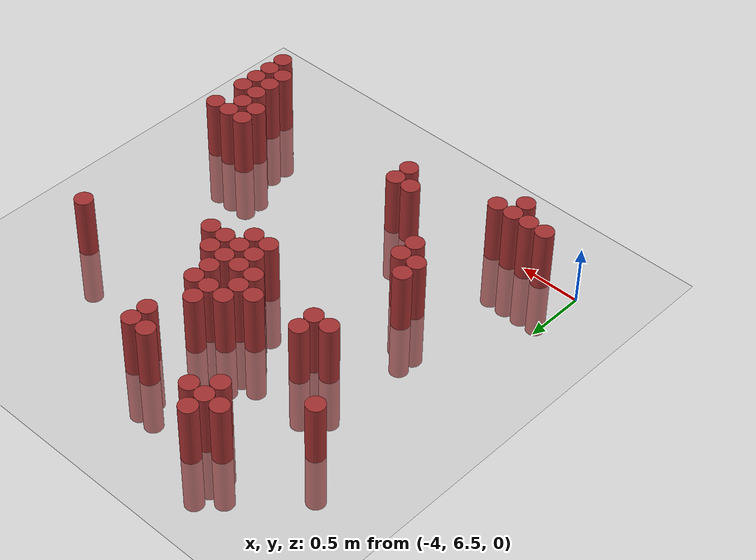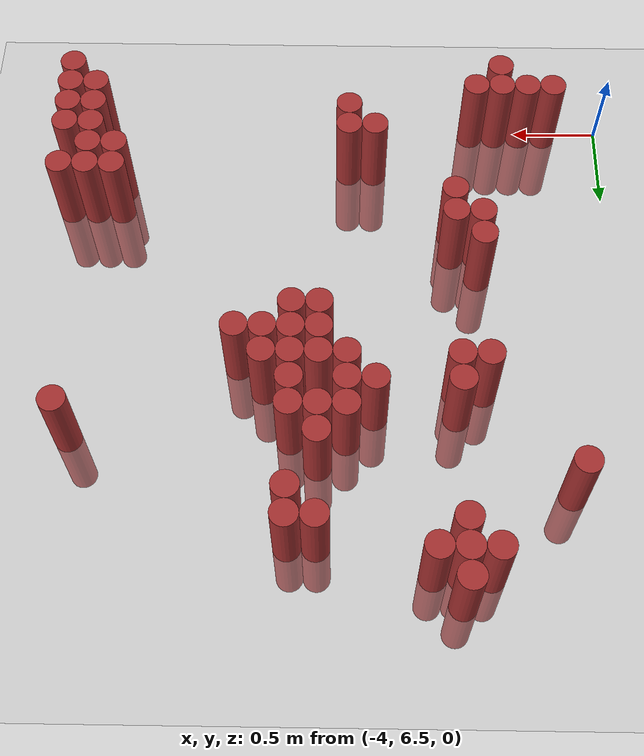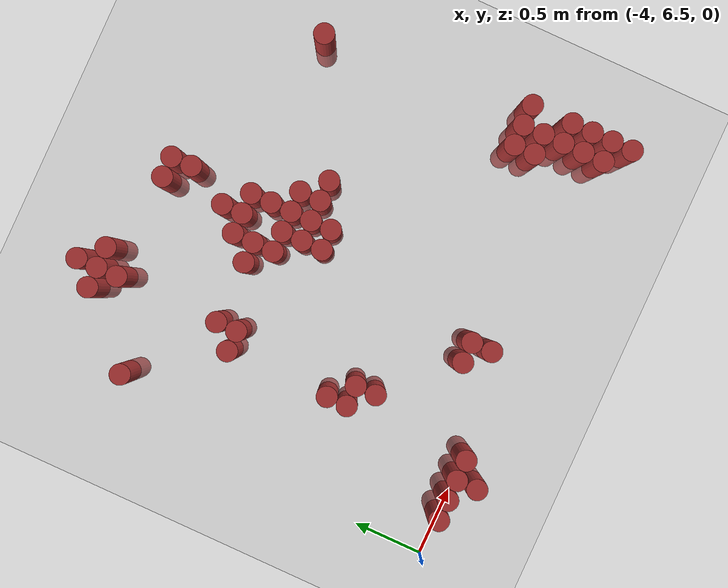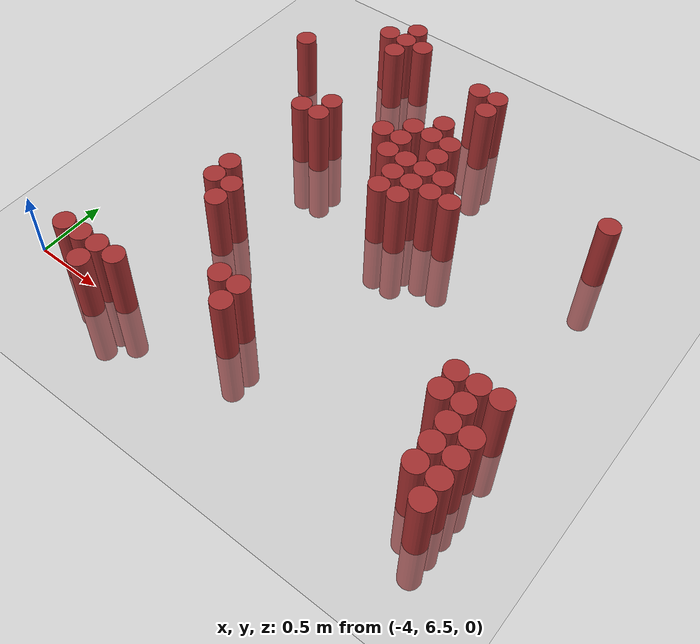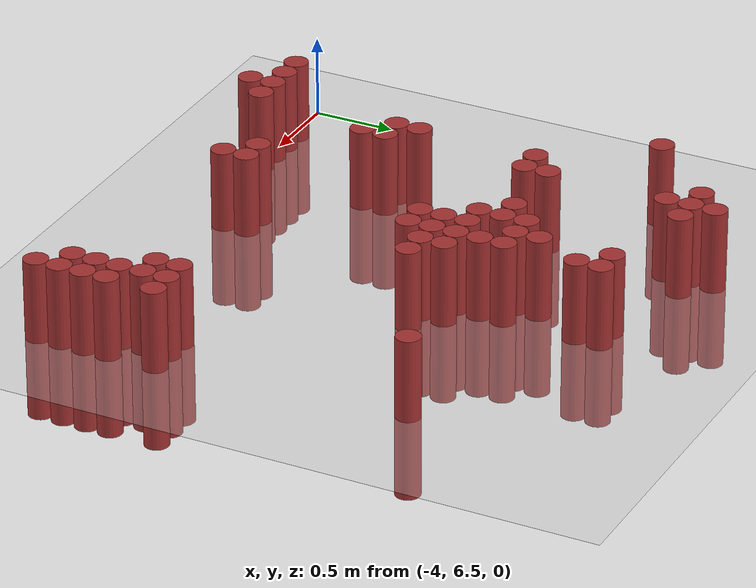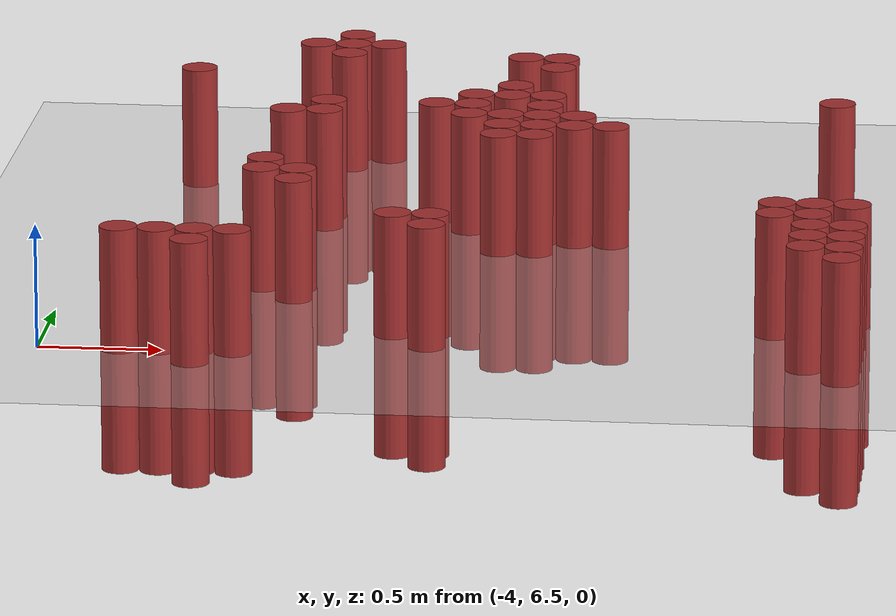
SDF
<sdf version="1.6">
 <world name="default">
  <model name="ground_plane">
   <static>1</static>
   <link name="link">
    <collision name="collision">
     <geometry><plane><normal>0 0 1</normal><size>100 100</size></plane></geometry>
     <surface><friction><ode><mu>100</mu><mu2>50</mu2></ode></friction></surface>
    </collision>
    <visual name="visual">
     <cast_shadows>0</cast_shadows>
     <geometry><plane><normal>0 0 1</normal><size>100 100</size></plane></geometry>
     <material>
      <script><uri>file://media/materials/scripts/gazebo.material</uri><name>Gazebo/Grey</name></script>
     </material>
    </visual>
   </link>
  </model>
  <model name="unit_cylinder_165">
   <static>1</static>
   <pose>-3.675000 6.525000 0.000000 0.000000 0.000000 0.000000</pose>
   <link name="link">
    <inertial>
     <mass>1</mass>
     <inertia><ixx>0.145833</ixx><ixy>0</ixy><ixz>0</ixz><iyy>0.145833</iyy><iyz>0</iyz><izz>0.125</izz></inertia>
    </inertial>
    <collision name="collision">
     <geometry><cylinder><radius>0.075000</radius><length>1</length></cylinder></geometry>
    </collision>
    <visual name="visual">
     <geometry><cylinder><radius>0.075000</radius><length>1</length></cylinder></geometry>
     <material>
      <ambient>0.648000 0.192000 0.192000 1</ambient>
      <diffuse>0.648000 0.192000 0.192000 1</diffuse>
     </material>
     <material>
      <script><name>Gazebo/Grey</name><uri>file://media/materials/scripts/gazebo.material</uri></script>
     </material>
    </visual>
   </link>
  </model>
  <model name="unit_cylinder_166">
   <static>1</static>
   <pose>-3.675000 8.925000 0.000000 0.000000 0.000000 0.000000</pose>
   <link name="link">
    <inertial>
     <mass>1</mass>
     <inertia><ixx>0.145833</ixx><ixy>0</ixy><ixz>0</ixz><iyy>0.145833</iyy><iyz>0</iyz><izz>0.125</izz></inertia>
    </inertial>
    <collision name="collision">
     <geometry><cylinder><radius>0.075000</radius><length>1</length></cylinder></geometry>
    </collision>
    <visual name="visual">
     <geometry><cylinder><radius>0.075000</radius><length>1</length></cylinder></geometry>
     <material>
      <ambient>0.648000 0.192000 0.192000 1</ambient>
      <diffuse>0.648000 0.192000 0.192000 1</diffuse>
     </material>
     <material>
      <script><name>Gazebo/Grey</name><uri>file://media/materials/scripts/gazebo.material</uri></script>
     </material>
    </visual>
   </link>
  </model>
  <model name="unit_cylinder_171">
   <static>1</static>
   <pose>-3.525000 6.525000 0.000000 0.000000 0.000000 0.000000</pose>
   <link name="link">
    <inertial>
     <mass>1</mass>
     <inertia><ixx>0.145833</ixx><ixy>0</ixy><ixz>0</ixz><iyy>0.145833</iyy><iyz>0</iyz><izz>0.125</izz></inertia>
    </inertial>
    <collision name="collision">
     <geometry><cylinder><radius>0.075000</radius><length>1</length></cylinder></geometry>
    </collision>
    <visual name="visual">
     <geometry><cylinder><radius>0.075000</radius><length>1</length></cylinder></geometry>
     <material>
      <ambient>0.648000 0.192000 0.192000 1</ambient>
      <diffuse>0.648000 0.192000 0.192000 1</diffuse>
     </material>
     <material>
      <script><name>Gazebo/Grey</name><uri>file://media/materials/scripts/gazebo.material</uri></script>
     </material>
    </visual>
   </link>
  </model>
  <model name="unit_cylinder_176">
   <static>1</static>
   <pose>-3.375000 6.375000 0.000000 0.000000 0.000000 0.000000</pose>
   <link name="link">
    <inertial>
     <mass>1</mass>
     <inertia><ixx>0.145833</ixx><ixy>0</ixy><ixz>0</ixz><iyy>0.145833</iyy><iyz>0</iyz><izz>0.125</izz></inertia>
    </inertial>
    <collision name="collision">
     <geometry><cylinder><radius>0.075000</radius><length>1</length></cylinder></geometry>
    </collision>
    <visual name="visual">
     <geometry><cylinder><radius>0.075000</radius><length>1</length></cylinder></geometry>
     <material>
      <ambient>0.648000 0.192000 0.192000 1</ambient>
      <diffuse>0.648000 0.192000 0.192000 1</diffuse>
     </material>
     <material>
      <script><name>Gazebo/Grey</name><uri>file://media/materials/scripts/gazebo.material</uri></script>
     </material>
    </visual>
   </link>
  </model>
  <model name="unit_cylinder_177">
   <static>1</static>
   <pose>-3.375000 6.525000 0.000000 0.000000 0.000000 0.000000</pose>
   <link name="link">
    <inertial>
     <mass>1</mass>
     <inertia><ixx>0.145833</ixx><ixy>0</ixy><ixz>0</ixz><iyy>0.145833</iyy><iyz>0</iyz><izz>0.125</izz></inertia>
    </inertial>
    <collision name="collision">
     <geometry><cylinder><radius>0.075000</radius><length>1</length></cylinder></geometry>
    </collision>
    <visual name="visual">
     <geometry><cylinder><radius>0.075000</radius><length>1</length></cylinder></geometry>
     <material>
      <ambient>0.648000 0.192000 0.192000 1</ambient>
      <diffuse>0.648000 0.192000 0.192000 1</diffuse>
     </material>
     <material>
      <script><name>Gazebo/Grey</name><uri>file://media/materials/scripts/gazebo.material</uri></script>
     </material>
    </visual>
   </link>
  </model>
  <model name="unit_cylinder_178">
   <static>1</static>
   <pose>-3.225000 6.525000 0.000000 0.000000 0.000000 0.000000</pose>
   <link name="link">
    <inertial>
     <mass>1</mass>
     <inertia><ixx>0.145833</ixx><ixy>0</ixy><ixz>0</ixz><iyy>0.145833</iyy><iyz>0</iyz><izz>0.125</izz></inertia>
    </inertial>
    <collision name="collision">
     <geometry><cylinder><radius>0.075000</radius><length>1</length></cylinder></geometry>
    </collision>
    <visual name="visual">
     <geometry><cylinder><radius>0.075000</radius><length>1</length></cylinder></geometry>
     <material>
      <ambient>0.648000 0.192000 0.192000 1</ambient>
      <diffuse>0.648000 0.192000 0.192000 1</diffuse>
     </material>
     <material>
      <script><name>Gazebo/Grey</name><uri>file://media/materials/scripts/gazebo.material</uri></script>
     </material>
    </visual>
   </link>
  </model>
  <model name="unit_cylinder_179">
   <static>1</static>
   <pose>-3.225000 7.425000 0.000000 0.000000 0.000000 0.000000</pose>
   <link name="link">
    <inertial>
     <mass>1</mass>
     <inertia><ixx>0.145833</ixx><ixy>0</ixy><ixz>0</ixz><iyy>0.145833</iyy><iyz>0</iyz><izz>0.125</izz></inertia>
    </inertial>
    <collision name="collision">
     <geometry><cylinder><radius>0.075000</radius><length>1</length></cylinder></geometry>
    </collision>
    <visual name="visual">
     <geometry><cylinder><radius>0.075000</radius><length>1</length></cylinder></geometry>
     <material>
      <ambient>0.648000 0.192000 0.192000 1</ambient>
      <diffuse>0.648000 0.192000 0.192000 1</diffuse>
     </material>
     <material>
      <script><name>Gazebo/Grey</name><uri>file://media/materials/scripts/gazebo.material</uri></script>
     </material>
    </visual>
   </link>
  </model>
  <model name="unit_cylinder_180">
   <static>1</static>
   <pose>-3.225000 7.575000 0.000000 0.000000 0.000000 0.000000</pose>
   <link name="link">
    <inertial>
     <mass>1</mass>
     <inertia><ixx>0.145833</ixx><ixy>0</ixy><ixz>0</ixz><iyy>0.145833</iyy><iyz>0</iyz><izz>0.125</izz></inertia>
    </inertial>
    <collision name="collision">
     <geometry><cylinder><radius>0.075000</radius><length>1</length></cylinder></geometry>
    </collision>
    <visual name="visual">
     <geometry><cylinder><radius>0.075000</radius><length>1</length></cylinder></geometry>
     <material>
      <ambient>0.648000 0.192000 0.192000 1</ambient>
      <diffuse>0.648000 0.192000 0.192000 1</diffuse>
     </material>
     <material>
      <script><name>Gazebo/Grey</name><uri>file://media/materials/scripts/gazebo.material</uri></script>
     </material>
    </visual>
   </link>
  </model>
  <model name="unit_cylinder_181">
   <static>1</static>
   <pose>-3.225000 8.325000 0.000000 0.000000 0.000000 0.000000</pose>
   <link name="link">
    <inertial>
     <mass>1</mass>
     <inertia><ixx>0.145833</ixx><ixy>0</ixy><ixz>0</ixz><iyy>0.145833</iyy><iyz>0</iyz><izz>0.125</izz></inertia>
    </inertial>
    <collision name="collision">
     <geometry><cylinder><radius>0.075000</radius><length>1</length></cylinder></geometry>
    </collision>
    <visual name="visual">
     <geometry><cylinder><radius>0.075000</radius><length>1</length></cylinder></geometry>
     <material>
      <ambient>0.648000 0.192000 0.192000 1</ambient>
      <diffuse>0.648000 0.192000 0.192000 1</diffuse>
     </material>
     <material>
      <script><name>Gazebo/Grey</name><uri>file://media/materials/scripts/gazebo.material</uri></script>
     </material>
    </visual>
   </link>
  </model>
  <model name="unit_cylinder_182">
   <static>1</static>
   <pose>-3.225000 9.375000 0.000000 0.000000 0.000000 0.000000</pose>
   <link name="link">
    <inertial>
     <mass>1</mass>
     <inertia><ixx>0.145833</ixx><ixy>0</ixy><ixz>0</ixz><iyy>0.145833</iyy><iyz>0</iyz><izz>0.125</izz></inertia>
    </inertial>
    <collision name="collision">
     <geometry><cylinder><radius>0.075000</radius><length>1</length></cylinder></geometry>
    </collision>
    <visual name="visual">
     <geometry><cylinder><radius>0.075000</radius><length>1</length></cylinder></geometry>
     <material>
      <ambient>0.648000 0.192000 0.192000 1</ambient>
      <diffuse>0.648000 0.192000 0.192000 1</diffuse>
     </material>
     <material>
      <script><name>Gazebo/Grey</name><uri>file://media/materials/scripts/gazebo.material</uri></script>
     </material>
    </visual>
   </link>
  </model>
  <model name="unit_cylinder_183">
   <static>1</static>
   <pose>-3.075000 7.275000 0.000000 0.000000 0.000000 0.000000</pose>
   <link name="link">
    <inertial>
     <mass>1</mass>
     <inertia><ixx>0.145833</ixx><ixy>0</ixy><ixz>0</ixz><iyy>0.145833</iyy><iyz>0</iyz><izz>0.125</izz></inertia>
    </inertial>
    <collision name="collision">
     <geometry><cylinder><radius>0.075000</radius><length>1</length></cylinder></geometry>
    </collision>
    <visual name="visual">
     <geometry><cylinder><radius>0.075000</radius><length>1</length></cylinder></geometry>
     <material>
      <ambient>0.648000 0.192000 0.192000 1</ambient>
      <diffuse>0.648000 0.192000 0.192000 1</diffuse>
     </material>
     <material>
      <script><name>Gazebo/Grey</name><uri>file://media/materials/scripts/gazebo.material</uri></script>
     </material>
    </visual>
   </link>
  </model>
  <model name="unit_cylinder_184">
   <static>1</static>
   <pose>-3.075000 7.425000 0.000000 0.000000 0.000000 0.000000</pose>
   <link name="link">
    <inertial>
     <mass>1</mass>
     <inertia><ixx>0.145833</ixx><ixy>0</ixy><ixz>0</ixz><iyy>0.145833</iyy><iyz>0</iyz><izz>0.125</izz></inertia>
    </inertial>
    <collision name="collision">
     <geometry><cylinder><radius>0.075000</radius><length>1</length></cylinder></geometry>
    </collision>
    <visual name="visual">
     <geometry><cylinder><radius>0.075000</radius><length>1</length></cylinder></geometry>
     <material>
      <ambient>0.648000 0.192000 0.192000 1</ambient>
      <diffuse>0.648000 0.192000 0.192000 1</diffuse>
     </material>
     <material>
      <script><name>Gazebo/Grey</name><uri>file://media/materials/scripts/gazebo.material</uri></script>
     </material>
    </visual>
   </link>
  </model>
  <model name="unit_cylinder_185">
   <static>1</static>
   <pose>-3.075000 8.325000 0.000000 0.000000 0.000000 0.000000</pose>
   <link name="link">
    <inertial>
     <mass>1</mass>
     <inertia><ixx>0.145833</ixx><ixy>0</ixy><ixz>0</ixz><iyy>0.145833</iyy><iyz>0</iyz><izz>0.125</izz></inertia>
    </inertial>
    <collision name="collision">
     <geometry><cylinder><radius>0.075000</radius><length>1</length></cylinder></geometry>
    </collision>
    <visual name="visual">
     <geometry><cylinder><radius>0.075000</radius><length>1</length></cylinder></geometry>
     <material>
      <ambient>0.648000 0.192000 0.192000 1</ambient>
      <diffuse>0.648000 0.192000 0.192000 1</diffuse>
     </material>
     <material>
      <script><name>Gazebo/Grey</name><uri>file://media/materials/scripts/gazebo.material</uri></script>
     </material>
    </visual>
   </link>
  </model>
  <model name="unit_cylinder_186">
   <static>1</static>
   <pose>-3.075000 8.475000 0.000000 0.000000 0.000000 0.000000</pose>
   <link name="link">
    <inertial>
     <mass>1</mass>
     <inertia><ixx>0.145833</ixx><ixy>0</ixy><ixz>0</ixz><iyy>0.145833</iyy><iyz>0</iyz><izz>0.125</izz></inertia>
    </inertial>
    <collision name="collision">
     <geometry><cylinder><radius>0.075000</radius><length>1</length></cylinder></geometry>
    </collision>
    <visual name="visual">
     <geometry><cylinder><radius>0.075000</radius><length>1</length></cylinder></geometry>
     <material>
      <ambient>0.648000 0.192000 0.192000 1</ambient>
      <diffuse>0.648000 0.192000 0.192000 1</diffuse>
     </material>
     <material>
      <script><name>Gazebo/Grey</name><uri>file://media/materials/scripts/gazebo.material</uri></script>
     </material>
    </visual>
   </link>
  </model>
  <model name="unit_cylinder_187">
   <static>1</static>
   <pose>-3.075000 9.225000 0.000000 0.000000 0.000000 0.000000</pose>
   <link name="link">
    <inertial>
     <mass>1</mass>
     <inertia><ixx>0.145833</ixx><ixy>0</ixy><ixz>0</ixz><iyy>0.145833</iyy><iyz>0</iyz><izz>0.125</izz></inertia>
    </inertial>
    <collision name="collision">
     <geometry><cylinder><radius>0.075000</radius><length>1</length></cylinder></geometry>
    </collision>
    <visual name="visual">
     <geometry><cylinder><radius>0.075000</radius><length>1</length></cylinder></geometry>
     <material>
      <ambient>0.648000 0.192000 0.192000 1</ambient>
      <diffuse>0.648000 0.192000 0.192000 1</diffuse>
     </material>
     <material>
      <script><name>Gazebo/Grey</name><uri>file://media/materials/scripts/gazebo.material</uri></script>
     </material>
    </visual>
   </link>
  </model>
  <model name="unit_cylinder_188">
   <static>1</static>
   <pose>-3.075000 9.375000 0.000000 0.000000 0.000000 0.000000</pose>
   <link name="link">
    <inertial>
     <mass>1</mass>
     <inertia><ixx>0.145833</ixx><ixy>0</ixy><ixz>0</ixz><iyy>0.145833</iyy><iyz>0</iyz><izz>0.125</izz></inertia>
    </inertial>
    <collision name="collision">
     <geometry><cylinder><radius>0.075000</radius><length>1</length></cylinder></geometry>
    </collision>
    <visual name="visual">
     <geometry><cylinder><radius>0.075000</radius><length>1</length></cylinder></geometry>
     <material>
      <ambient>0.648000 0.192000 0.192000 1</ambient>
      <diffuse>0.648000 0.192000 0.192000 1</diffuse>
     </material>
     <material>
      <script><name>Gazebo/Grey</name><uri>file://media/materials/scripts/gazebo.material</uri></script>
     </material>
    </visual>
   </link>
  </model>
  <model name="unit_cylinder_189">
   <static>1</static>
   <pose>-3.075000 9.525000 0.000000 0.000000 0.000000 0.000000</pose>
   <link name="link">
    <inertial>
     <mass>1</mass>
     <inertia><ixx>0.145833</ixx><ixy>0</ixy><ixz>0</ixz><iyy>0.145833</iyy><iyz>0</iyz><izz>0.125</izz></inertia>
    </inertial>
    <collision name="collision">
     <geometry><cylinder><radius>0.075000</radius><length>1</length></cylinder></geometry>
    </collision>
    <visual name="visual">
     <geometry><cylinder><radius>0.075000</radius><length>1</length></cylinder></geometry>
     <material>
      <ambient>0.648000 0.192000 0.192000 1</ambient>
      <diffuse>0.648000 0.192000 0.192000 1</diffuse>
     </material>
     <material>
      <script><name>Gazebo/Grey</name><uri>file://media/materials/scripts/gazebo.material</uri></script>
     </material>
    </visual>
   </link>
  </model>
  <model name="unit_cylinder_190">
   <static>1</static>
   <pose>-2.925000 9.375000 0.000000 0.000000 0.000000 0.000000</pose>
   <link name="link">
    <inertial>
     <mass>1</mass>
     <inertia><ixx>0.145833</ixx><ixy>0</ixy><ixz>0</ixz><iyy>0.145833</iyy><iyz>0</iyz><izz>0.125</izz></inertia>
    </inertial>
    <collision name="collision">
     <geometry><cylinder><radius>0.075000</radius><length>1</length></cylinder></geometry>
    </collision>
    <visual name="visual">
     <geometry><cylinder><radius>0.075000</radius><length>1</length></cylinder></geometry>
     <material>
      <ambient>0.648000 0.192000 0.192000 1</ambient>
      <diffuse>0.648000 0.192000 0.192000 1</diffuse>
     </material>
     <material>
      <script><name>Gazebo/Grey</name><uri>file://media/materials/scripts/gazebo.material</uri></script>
     </material>
    </visual>
   </link>
  </model>
  <model name="unit_cylinder_194">
   <static>1</static>
   <pose>-2.625000 6.825000 0.000000 0.000000 0.000000 0.000000</pose>
   <link name="link">
    <inertial>
     <mass>1</mass>
     <inertia><ixx>0.145833</ixx><ixy>0</ixy><ixz>0</ixz><iyy>0.145833</iyy><iyz>0</iyz><izz>0.125</izz></inertia>
    </inertial>
    <collision name="collision">
     <geometry><cylinder><radius>0.075000</radius><length>1</length></cylinder></geometry>
    </collision>
    <visual name="visual">
     <geometry><cylinder><radius>0.075000</radius><length>1</length></cylinder></geometry>
     <material>
      <ambient>0.648000 0.192000 0.192000 1</ambient>
      <diffuse>0.648000 0.192000 0.192000 1</diffuse>
     </material>
     <material>
      <script><name>Gazebo/Grey</name><uri>file://media/materials/scripts/gazebo.material</uri></script>
     </material>
    </visual>
   </link>
  </model>
  <model name="unit_cylinder_195">
   <static>1</static>
   <pose>-2.625000 8.475000 0.000000 0.000000 0.000000 0.000000</pose>
   <link name="link">
    <inertial>
     <mass>1</mass>
     <inertia><ixx>0.145833</ixx><ixy>0</ixy><ixz>0</ixz><iyy>0.145833</iyy><iyz>0</iyz><izz>0.125</izz></inertia>
    </inertial>
    <collision name="collision">
     <geometry><cylinder><radius>0.075000</radius><length>1</length></cylinder></geometry>
    </collision>
    <visual name="visual">
     <geometry><cylinder><radius>0.075000</radius><length>1</length></cylinder></geometry>
     <material>
      <ambient>0.648000 0.192000 0.192000 1</ambient>
      <diffuse>0.648000 0.192000 0.192000 1</diffuse>
     </material>
     <material>
      <script><name>Gazebo/Grey</name><uri>file://media/materials/scripts/gazebo.material</uri></script>
     </material>
    </visual>
   </link>
  </model>
  <model name="unit_cylinder_196">
   <static>1</static>
   <pose>-2.475000 6.675000 0.000000 0.000000 0.000000 0.000000</pose>
   <link name="link">
    <inertial>
     <mass>1</mass>
     <inertia><ixx>0.145833</ixx><ixy>0</ixy><ixz>0</ixz><iyy>0.145833</iyy><iyz>0</iyz><izz>0.125</izz></inertia>
    </inertial>
    <collision name="collision">
     <geometry><cylinder><radius>0.075000</radius><length>1</length></cylinder></geometry>
    </collision>
    <visual name="visual">
     <geometry><cylinder><radius>0.075000</radius><length>1</length></cylinder></geometry>
     <material>
      <ambient>0.648000 0.192000 0.192000 1</ambient>
      <diffuse>0.648000 0.192000 0.192000 1</diffuse>
     </material>
     <material>
      <script><name>Gazebo/Grey</name><uri>file://media/materials/scripts/gazebo.material</uri></script>
     </material>
    </visual>
   </link>
  </model>
  <model name="unit_cylinder_197">
   <static>1</static>
   <pose>-2.475000 6.825000 0.000000 0.000000 0.000000 0.000000</pose>
   <link name="link">
    <inertial>
     <mass>1</mass>
     <inertia><ixx>0.145833</ixx><ixy>0</ixy><ixz>0</ixz><iyy>0.145833</iyy><iyz>0</iyz><izz>0.125</izz></inertia>
    </inertial>
    <collision name="collision">
     <geometry><cylinder><radius>0.075000</radius><length>1</length></cylinder></geometry>
    </collision>
    <visual name="visual">
     <geometry><cylinder><radius>0.075000</radius><length>1</length></cylinder></geometry>
     <material>
      <ambient>0.648000 0.192000 0.192000 1</ambient>
      <diffuse>0.648000 0.192000 0.192000 1</diffuse>
     </material>
     <material>
      <script><name>Gazebo/Grey</name><uri>file://media/materials/scripts/gazebo.material</uri></script>
     </material>
    </visual>
   </link>
  </model>
  <model name="unit_cylinder_198">
   <static>1</static>
   <pose>-2.475000 8.325000 0.000000 0.000000 0.000000 0.000000</pose>
   <link name="link">
    <inertial>
     <mass>1</mass>
     <inertia><ixx>0.145833</ixx><ixy>0</ixy><ixz>0</ixz><iyy>0.145833</iyy><iyz>0</iyz><izz>0.125</izz></inertia>
    </inertial>
    <collision name="collision">
     <geometry><cylinder><radius>0.075000</radius><length>1</length></cylinder></geometry>
    </collision>
    <visual name="visual">
     <geometry><cylinder><radius>0.075000</radius><length>1</length></cylinder></geometry>
     <material>
      <ambient>0.648000 0.192000 0.192000 1</ambient>
      <diffuse>0.648000 0.192000 0.192000 1</diffuse>
     </material>
     <material>
      <script><name>Gazebo/Grey</name><uri>file://media/materials/scripts/gazebo.material</uri></script>
     </material>
    </visual>
   </link>
  </model>
  <model name="unit_cylinder_199">
   <static>1</static>
   <pose>-2.475000 8.475000 0.000000 0.000000 0.000000 0.000000</pose>
   <link name="link">
    <inertial>
     <mass>1</mass>
     <inertia><ixx>0.145833</ixx><ixy>0</ixy><ixz>0</ixz><iyy>0.145833</iyy><iyz>0</iyz><izz>0.125</izz></inertia>
    </inertial>
    <collision name="collision">
     <geometry><cylinder><radius>0.075000</radius><length>1</length></cylinder></geometry>
    </collision>
    <visual name="visual">
     <geometry><cylinder><radius>0.075000</radius><length>1</length></cylinder></geometry>
     <material>
      <ambient>0.648000 0.192000 0.192000 1</ambient>
      <diffuse>0.648000 0.192000 0.192000 1</diffuse>
     </material>
     <material>
      <script><name>Gazebo/Grey</name><uri>file://media/materials/scripts/gazebo.material</uri></script>
     </material>
    </visual>
   </link>
  </model>
  <model name="unit_cylinder_200">
   <static>1</static>
   <pose>-2.475000 8.625000 0.000000 0.000000 0.000000 0.000000</pose>
   <link name="link">
    <inertial>
     <mass>1</mass>
     <inertia><ixx>0.145833</ixx><ixy>0</ixy><ixz>0</ixz><iyy>0.145833</iyy><iyz>0</iyz><izz>0.125</izz></inertia>
    </inertial>
    <collision name="collision">
     <geometry><cylinder><radius>0.075000</radius><length>1</length></cylinder></geometry>
    </collision>
    <visual name="visual">
     <geometry><cylinder><radius>0.075000</radius><length>1</length></cylinder></geometry>
     <material>
      <ambient>0.648000 0.192000 0.192000 1</ambient>
      <diffuse>0.648000 0.192000 0.192000 1</diffuse>
     </material>
     <material>
      <script><name>Gazebo/Grey</name><uri>file://media/materials/scripts/gazebo.material</uri></script>
     </material>
    </visual>
   </link>
  </model>
  <model name="unit_cylinder_201">
   <static>1</static>
   <pose>-2.325000 8.025000 0.000000 0.000000 0.000000 0.000000</pose>
   <link name="link">
    <inertial>
     <mass>1</mass>
     <inertia><ixx>0.145833</ixx><ixy>0</ixy><ixz>0</ixz><iyy>0.145833</iyy><iyz>0</iyz><izz>0.125</izz></inertia>
    </inertial>
    <collision name="collision">
     <geometry><cylinder><radius>0.075000</radius><length>1</length></cylinder></geometry>
    </collision>
    <visual name="visual">
     <geometry><cylinder><radius>0.075000</radius><length>1</length></cylinder></geometry>
     <material>
      <ambient>0.648000 0.192000 0.192000 1</ambient>
      <diffuse>0.648000 0.192000 0.192000 1</diffuse>
     </material>
     <material>
      <script><name>Gazebo/Grey</name><uri>file://media/materials/scripts/gazebo.material</uri></script>
     </material>
    </visual>
   </link>
  </model>
  <model name="unit_cylinder_202">
   <static>1</static>
   <pose>-2.325000 8.175000 0.000000 0.000000 0.000000 0.000000</pose>
   <link name="link">
    <inertial>
     <mass>1</mass>
     <inertia><ixx>0.145833</ixx><ixy>0</ixy><ixz>0</ixz><iyy>0.145833</iyy><iyz>0</iyz><izz>0.125</izz></inertia>
    </inertial>
    <collision name="collision">
     <geometry><cylinder><radius>0.075000</radius><length>1</length></cylinder></geometry>
    </collision>
    <visual name="visual">
     <geometry><cylinder><radius>0.075000</radius><length>1</length></cylinder></geometry>
     <material>
      <ambient>0.648000 0.192000 0.192000 1</ambient>
      <diffuse>0.648000 0.192000 0.192000 1</diffuse>
     </material>
     <material>
      <script><name>Gazebo/Grey</name><uri>file://media/materials/scripts/gazebo.material</uri></script>
     </material>
    </visual>
   </link>
  </model>
  <model name="unit_cylinder_203">
   <static>1</static>
   <pose>-2.325000 8.325000 0.000000 0.000000 0.000000 0.000000</pose>
   <link name="link">
    <inertial>
     <mass>1</mass>
     <inertia><ixx>0.145833</ixx><ixy>0</ixy><ixz>0</ixz><iyy>0.145833</iyy><iyz>0</iyz><izz>0.125</izz></inertia>
    </inertial>
    <collision name="collision">
     <geometry><cylinder><radius>0.075000</radius><length>1</length></cylinder></geometry>
    </collision>
    <visual name="visual">
     <geometry><cylinder><radius>0.075000</radius><length>1</length></cylinder></geometry>
     <material>
      <ambient>0.648000 0.192000 0.192000 1</ambient>
      <diffuse>0.648000 0.192000 0.192000 1</diffuse>
     </material>
     <material>
      <script><name>Gazebo/Grey</name><uri>file://media/materials/scripts/gazebo.material</uri></script>
     </material>
    </visual>
   </link>
  </model>
  <model name="unit_cylinder_204">
   <static>1</static>
   <pose>-2.325000 8.625000 0.000000 0.000000 0.000000 0.000000</pose>
   <link name="link">
    <inertial>
     <mass>1</mass>
     <inertia><ixx>0.145833</ixx><ixy>0</ixy><ixz>0</ixz><iyy>0.145833</iyy><iyz>0</iyz><izz>0.125</izz></inertia>
    </inertial>
    <collision name="collision">
     <geometry><cylinder><radius>0.075000</radius><length>1</length></cylinder></geometry>
    </collision>
    <visual name="visual">
     <geometry><cylinder><radius>0.075000</radius><length>1</length></cylinder></geometry>
     <material>
      <ambient>0.648000 0.192000 0.192000 1</ambient>
      <diffuse>0.648000 0.192000 0.192000 1</diffuse>
     </material>
     <material>
      <script><name>Gazebo/Grey</name><uri>file://media/materials/scripts/gazebo.material</uri></script>
     </material>
    </visual>
   </link>
  </model>
  <model name="unit_cylinder_205">
   <static>1</static>
   <pose>-2.325000 8.775000 0.000000 0.000000 0.000000 0.000000</pose>
   <link name="link">
    <inertial>
     <mass>1</mass>
     <inertia><ixx>0.145833</ixx><ixy>0</ixy><ixz>0</ixz><iyy>0.145833</iyy><iyz>0</iyz><izz>0.125</izz></inertia>
    </inertial>
    <collision name="collision">
     <geometry><cylinder><radius>0.075000</radius><length>1</length></cylinder></geometry>
    </collision>
    <visual name="visual">
     <geometry><cylinder><radius>0.075000</radius><length>1</length></cylinder></geometry>
     <material>
      <ambient>0.648000 0.192000 0.192000 1</ambient>
      <diffuse>0.648000 0.192000 0.192000 1</diffuse>
     </material>
     <material>
      <script><name>Gazebo/Grey</name><uri>file://media/materials/scripts/gazebo.material</uri></script>
     </material>
    </visual>
   </link>
  </model>
  <model name="unit_cylinder_206">
   <static>1</static>
   <pose>-2.325000 9.225000 0.000000 0.000000 0.000000 0.000000</pose>
   <link name="link">
    <inertial>
     <mass>1</mass>
     <inertia><ixx>0.145833</ixx><ixy>0</ixy><ixz>0</ixz><iyy>0.145833</iyy><iyz>0</iyz><izz>0.125</izz></inertia>
    </inertial>
    <collision name="collision">
     <geometry><cylinder><radius>0.075000</radius><length>1</length></cylinder></geometry>
    </collision>
    <visual name="visual">
     <geometry><cylinder><radius>0.075000</radius><length>1</length></cylinder></geometry>
     <material>
      <ambient>0.648000 0.192000 0.192000 1</ambient>
      <diffuse>0.648000 0.192000 0.192000 1</diffuse>
     </material>
     <material>
      <script><name>Gazebo/Grey</name><uri>file://media/materials/scripts/gazebo.material</uri></script>
     </material>
    </visual>
   </link>
  </model>
  <model name="unit_cylinder_207">
   <static>1</static>
   <pose>-2.175000 8.025000 0.000000 0.000000 0.000000 0.000000</pose>
   <link name="link">
    <inertial>
     <mass>1</mass>
     <inertia><ixx>0.145833</ixx><ixy>0</ixy><ixz>0</ixz><iyy>0.145833</iyy><iyz>0</iyz><izz>0.125</izz></inertia>
    </inertial>
    <collision name="collision">
     <geometry><cylinder><radius>0.075000</radius><length>1</length></cylinder></geometry>
    </collision>
    <visual name="visual">
     <geometry><cylinder><radius>0.075000</radius><length>1</length></cylinder></geometry>
     <material>
      <ambient>0.648000 0.192000 0.192000 1</ambient>
      <diffuse>0.648000 0.192000 0.192000 1</diffuse>
     </material>
     <material>
      <script><name>Gazebo/Grey</name><uri>file://media/materials/scripts/gazebo.material</uri></script>
     </material>
    </visual>
   </link>
  </model>
  <model name="unit_cylinder_208">
   <static>1</static>
   <pose>-2.175000 8.175000 0.000000 0.000000 0.000000 0.000000</pose>
   <link name="link">
    <inertial>
     <mass>1</mass>
     <inertia><ixx>0.145833</ixx><ixy>0</ixy><ixz>0</ixz><iyy>0.145833</iyy><iyz>0</iyz><izz>0.125</izz></inertia>
    </inertial>
    <collision name="collision">
     <geometry><cylinder><radius>0.075000</radius><length>1</length></cylinder></geometry>
    </collision>
    <visual name="visual">
     <geometry><cylinder><radius>0.075000</radius><length>1</length></cylinder></geometry>
     <material>
      <ambient>0.648000 0.192000 0.192000 1</ambient>
      <diffuse>0.648000 0.192000 0.192000 1</diffuse>
     </material>
     <material>
      <script><name>Gazebo/Grey</name><uri>file://media/materials/scripts/gazebo.material</uri></script>
     </material>
    </visual>
   </link>
  </model>
  <model name="unit_cylinder_209">
   <static>1</static>
   <pose>-2.175000 8.325000 0.000000 0.000000 0.000000 0.000000</pose>
   <link name="link">
    <inertial>
     <mass>1</mass>
     <inertia><ixx>0.145833</ixx><ixy>0</ixy><ixz>0</ixz><iyy>0.145833</iyy><iyz>0</iyz><izz>0.125</izz></inertia>
    </inertial>
    <collision name="collision">
     <geometry><cylinder><radius>0.075000</radius><length>1</length></cylinder></geometry>
    </collision>
    <visual name="visual">
     <geometry><cylinder><radius>0.075000</radius><length>1</length></cylinder></geometry>
     <material>
      <ambient>0.648000 0.192000 0.192000 1</ambient>
      <diffuse>0.648000 0.192000 0.192000 1</diffuse>
     </material>
     <material>
      <script><name>Gazebo/Grey</name><uri>file://media/materials/scripts/gazebo.material</uri></script>
     </material>
    </visual>
   </link>
  </model>
  <model name="unit_cylinder_210">
   <static>1</static>
   <pose>-2.175000 8.475000 0.000000 0.000000 0.000000 0.000000</pose>
   <link name="link">
    <inertial>
     <mass>1</mass>
     <inertia><ixx>0.145833</ixx><ixy>0</ixy><ixz>0</ixz><iyy>0.145833</iyy><iyz>0</iyz><izz>0.125</izz></inertia>
    </inertial>
    <collision name="collision">
     <geometry><cylinder><radius>0.075000</radius><length>1</length></cylinder></geometry>
    </collision>
    <visual name="visual">
     <geometry><cylinder><radius>0.075000</radius><length>1</length></cylinder></geometry>
     <material>
      <ambient>0.648000 0.192000 0.192000 1</ambient>
      <diffuse>0.648000 0.192000 0.192000 1</diffuse>
     </material>
     <material>
      <script><name>Gazebo/Grey</name><uri>file://media/materials/scripts/gazebo.material</uri></script>
     </material>
    </visual>
   </link>
  </model>
  <model name="unit_cylinder_211">
   <static>1</static>
   <pose>-2.175000 8.625000 0.000000 0.000000 0.000000 0.000000</pose>
   <link name="link">
    <inertial>
     <mass>1</mass>
     <inertia><ixx>0.145833</ixx><ixy>0</ixy><ixz>0</ixz><iyy>0.145833</iyy><iyz>0</iyz><izz>0.125</izz></inertia>
    </inertial>
    <collision name="collision">
     <geometry><cylinder><radius>0.075000</radius><length>1</length></cylinder></geometry>
    </collision>
    <visual name="visual">
     <geometry><cylinder><radius>0.075000</radius><length>1</length></cylinder></geometry>
     <material>
      <ambient>0.648000 0.192000 0.192000 1</ambient>
      <diffuse>0.648000 0.192000 0.192000 1</diffuse>
     </material>
     <material>
      <script><name>Gazebo/Grey</name><uri>file://media/materials/scripts/gazebo.material</uri></script>
     </material>
    </visual>
   </link>
  </model>
  <model name="unit_cylinder_212">
   <static>1</static>
   <pose>-2.175000 9.075000 0.000000 0.000000 0.000000 0.000000</pose>
   <link name="link">
    <inertial>
     <mass>1</mass>
     <inertia><ixx>0.145833</ixx><ixy>0</ixy><ixz>0</ixz><iyy>0.145833</iyy><iyz>0</iyz><izz>0.125</izz></inertia>
    </inertial>
    <collision name="collision">
     <geometry><cylinder><radius>0.075000</radius><length>1</length></cylinder></geometry>
    </collision>
    <visual name="visual">
     <geometry><cylinder><radius>0.075000</radius><length>1</length></cylinder></geometry>
     <material>
      <ambient>0.648000 0.192000 0.192000 1</ambient>
      <diffuse>0.648000 0.192000 0.192000 1</diffuse>
     </material>
     <material>
      <script><name>Gazebo/Grey</name><uri>file://media/materials/scripts/gazebo.material</uri></script>
     </material>
    </visual>
   </link>
  </model>
  <model name="unit_cylinder_213">
   <static>1</static>
   <pose>-2.175000 9.225000 0.000000 0.000000 0.000000 0.000000</pose>
   <link name="link">
    <inertial>
     <mass>1</mass>
     <inertia><ixx>0.145833</ixx><ixy>0</ixy><ixz>0</ixz><iyy>0.145833</iyy><iyz>0</iyz><izz>0.125</izz></inertia>
    </inertial>
    <collision name="collision">
     <geometry><cylinder><radius>0.075000</radius><length>1</length></cylinder></geometry>
    </collision>
    <visual name="visual">
     <geometry><cylinder><radius>0.075000</radius><length>1</length></cylinder></geometry>
     <material>
      <ambient>0.648000 0.192000 0.192000 1</ambient>
      <diffuse>0.648000 0.192000 0.192000 1</diffuse>
     </material>
     <material>
      <script><name>Gazebo/Grey</name><uri>file://media/materials/scripts/gazebo.material</uri></script>
     </material>
    </visual>
   </link>
  </model>
  <model name="unit_cylinder_214">
   <static>1</static>
   <pose>-2.025000 8.175000 0.000000 0.000000 0.000000 0.000000</pose>
   <link name="link">
    <inertial>
     <mass>1</mass>
     <inertia><ixx>0.145833</ixx><ixy>0</ixy><ixz>0</ixz><iyy>0.145833</iyy><iyz>0</iyz><izz>0.125</izz></inertia>
    </inertial>
    <collision name="collision">
     <geometry><cylinder><radius>0.075000</radius><length>1</length></cylinder></geometry>
    </collision>
    <visual name="visual">
     <geometry><cylinder><radius>0.075000</radius><length>1</length></cylinder></geometry>
     <material>
      <ambient>0.648000 0.192000 0.192000 1</ambient>
      <diffuse>0.648000 0.192000 0.192000 1</diffuse>
     </material>
     <material>
      <script><name>Gazebo/Grey</name><uri>file://media/materials/scripts/gazebo.material</uri></script>
     </material>
    </visual>
   </link>
  </model>
  <model name="unit_cylinder_215">
   <static>1</static>
   <pose>-2.025000 8.325000 0.000000 0.000000 0.000000 0.000000</pose>
   <link name="link">
    <inertial>
     <mass>1</mass>
     <inertia><ixx>0.145833</ixx><ixy>0</ixy><ixz>0</ixz><iyy>0.145833</iyy><iyz>0</iyz><izz>0.125</izz></inertia>
    </inertial>
    <collision name="collision">
     <geometry><cylinder><radius>0.075000</radius><length>1</length></cylinder></geometry>
    </collision>
    <visual name="visual">
     <geometry><cylinder><radius>0.075000</radius><length>1</length></cylinder></geometry>
     <material>
      <ambient>0.648000 0.192000 0.192000 1</ambient>
      <diffuse>0.648000 0.192000 0.192000 1</diffuse>
     </material>
     <material>
      <script><name>Gazebo/Grey</name><uri>file://media/materials/scripts/gazebo.material</uri></script>
     </material>
    </visual>
   </link>
  </model>
  <model name="unit_cylinder_216">
   <static>1</static>
   <pose>-1.875000 8.175000 0.000000 0.000000 0.000000 0.000000</pose>
   <link name="link">
    <inertial>
     <mass>1</mass>
     <inertia><ixx>0.145833</ixx><ixy>0</ixy><ixz>0</ixz><iyy>0.145833</iyy><iyz>0</iyz><izz>0.125</izz></inertia>
    </inertial>
    <collision name="collision">
     <geometry><cylinder><radius>0.075000</radius><length>1</length></cylinder></geometry>
    </collision>
    <visual name="visual">
     <geometry><cylinder><radius>0.075000</radius><length>1</length></cylinder></geometry>
     <material>
      <ambient>0.648000 0.192000 0.192000 1</ambient>
      <diffuse>0.648000 0.192000 0.192000 1</diffuse>
     </material>
     <material>
      <script><name>Gazebo/Grey</name><uri>file://media/materials/scripts/gazebo.material</uri></script>
     </material>
    </visual>
   </link>
  </model>
  <model name="unit_cylinder_224">
   <static>1</static>
   <pose>-1.125000 6.975000 0.000000 0.000000 0.000000 0.000000</pose>
   <link name="link">
    <inertial>
     <mass>1</mass>
     <inertia><ixx>0.145833</ixx><ixy>0</ixy><ixz>0</ixz><iyy>0.145833</iyy><iyz>0</iyz><izz>0.125</izz></inertia>
    </inertial>
    <collision name="collision">
     <geometry><cylinder><radius>0.075000</radius><length>1</length></cylinder></geometry>
    </collision>
    <visual name="visual">
     <geometry><cylinder><radius>0.075000</radius><length>1</length></cylinder></geometry>
     <material>
      <ambient>0.648000 0.192000 0.192000 1</ambient>
      <diffuse>0.648000 0.192000 0.192000 1</diffuse>
     </material>
     <material>
      <script><name>Gazebo/Grey</name><uri>file://media/materials/scripts/gazebo.material</uri></script>
     </material>
    </visual>
   </link>
  </model>
  <model name="unit_cylinder_225">
   <static>1</static>
   <pose>-1.125000 7.125000 0.000000 0.000000 0.000000 0.000000</pose>
   <link name="link">
    <inertial>
     <mass>1</mass>
     <inertia><ixx>0.145833</ixx><ixy>0</ixy><ixz>0</ixz><iyy>0.145833</iyy><iyz>0</iyz><izz>0.125</izz></inertia>
    </inertial>
    <collision name="collision">
     <geometry><cylinder><radius>0.075000</radius><length>1</length></cylinder></geometry>
    </collision>
    <visual name="visual">
     <geometry><cylinder><radius>0.075000</radius><length>1</length></cylinder></geometry>
     <material>
      <ambient>0.648000 0.192000 0.192000 1</ambient>
      <diffuse>0.648000 0.192000 0.192000 1</diffuse>
     </material>
     <material>
      <script><name>Gazebo/Grey</name><uri>file://media/materials/scripts/gazebo.material</uri></script>
     </material>
    </visual>
   </link>
  </model>
  <model name="unit_cylinder_227">
   <static>1</static>
   <pose>-0.975000 6.525000 0.000000 0.000000 0.000000 0.000000</pose>
   <link name="link">
    <inertial>
     <mass>1</mass>
     <inertia><ixx>0.145833</ixx><ixy>0</ixy><ixz>0</ixz><iyy>0.145833</iyy><iyz>0</iyz><izz>0.125</izz></inertia>
    </inertial>
    <collision name="collision">
     <geometry><cylinder><radius>0.075000</radius><length>1</length></cylinder></geometry>
    </collision>
    <visual name="visual">
     <geometry><cylinder><radius>0.075000</radius><length>1</length></cylinder></geometry>
     <material>
      <ambient>0.648000 0.192000 0.192000 1</ambient>
      <diffuse>0.648000 0.192000 0.192000 1</diffuse>
     </material>
     <material>
      <script><name>Gazebo/Grey</name><uri>file://media/materials/scripts/gazebo.material</uri></script>
     </material>
    </visual>
   </link>
  </model>
  <model name="unit_cylinder_228">
   <static>1</static>
   <pose>-0.975000 6.675000 0.000000 0.000000 0.000000 0.000000</pose>
   <link name="link">
    <inertial>
     <mass>1</mass>
     <inertia><ixx>0.145833</ixx><ixy>0</ixy><ixz>0</ixz><iyy>0.145833</iyy><iyz>0</iyz><izz>0.125</izz></inertia>
    </inertial>
    <collision name="collision">
     <geometry><cylinder><radius>0.075000</radius><length>1</length></cylinder></geometry>
    </collision>
    <visual name="visual">
     <geometry><cylinder><radius>0.075000</radius><length>1</length></cylinder></geometry>
     <material>
      <ambient>0.648000 0.192000 0.192000 1</ambient>
      <diffuse>0.648000 0.192000 0.192000 1</diffuse>
     </material>
     <material>
      <script><name>Gazebo/Grey</name><uri>file://media/materials/scripts/gazebo.material</uri></script>
     </material>
    </visual>
   </link>
  </model>
  <model name="unit_cylinder_229">
   <static>1</static>
   <pose>-0.975000 6.825000 0.000000 0.000000 0.000000 0.000000</pose>
   <link name="link">
    <inertial>
     <mass>1</mass>
     <inertia><ixx>0.145833</ixx><ixy>0</ixy><ixz>0</ixz><iyy>0.145833</iyy><iyz>0</iyz><izz>0.125</izz></inertia>
    </inertial>
    <collision name="collision">
     <geometry><cylinder><radius>0.075000</radius><length>1</length></cylinder></geometry>
    </collision>
    <visual name="visual">
     <geometry><cylinder><radius>0.075000</radius><length>1</length></cylinder></geometry>
     <material>
      <ambient>0.648000 0.192000 0.192000 1</ambient>
      <diffuse>0.648000 0.192000 0.192000 1</diffuse>
     </material>
     <material>
      <script><name>Gazebo/Grey</name><uri>file://media/materials/scripts/gazebo.material</uri></script>
     </material>
    </visual>
   </link>
  </model>
  <model name="unit_cylinder_230">
   <static>1</static>
   <pose>-0.975000 6.975000 0.000000 0.000000 0.000000 0.000000</pose>
   <link name="link">
    <inertial>
     <mass>1</mass>
     <inertia><ixx>0.145833</ixx><ixy>0</ixy><ixz>0</ixz><iyy>0.145833</iyy><iyz>0</iyz><izz>0.125</izz></inertia>
    </inertial>
    <collision name="collision">
     <geometry><cylinder><radius>0.075000</radius><length>1</length></cylinder></geometry>
    </collision>
    <visual name="visual">
     <geometry><cylinder><radius>0.075000</radius><length>1</length></cylinder></geometry>
     <material>
      <ambient>0.648000 0.192000 0.192000 1</ambient>
      <diffuse>0.648000 0.192000 0.192000 1</diffuse>
     </material>
     <material>
      <script><name>Gazebo/Grey</name><uri>file://media/materials/scripts/gazebo.material</uri></script>
     </material>
    </visual>
   </link>
  </model>
  <model name="unit_cylinder_231">
   <static>1</static>
   <pose>-0.975000 7.125000 0.000000 0.000000 0.000000 0.000000</pose>
   <link name="link">
    <inertial>
     <mass>1</mass>
     <inertia><ixx>0.145833</ixx><ixy>0</ixy><ixz>0</ixz><iyy>0.145833</iyy><iyz>0</iyz><izz>0.125</izz></inertia>
    </inertial>
    <collision name="collision">
     <geometry><cylinder><radius>0.075000</radius><length>1</length></cylinder></geometry>
    </collision>
    <visual name="visual">
     <geometry><cylinder><radius>0.075000</radius><length>1</length></cylinder></geometry>
     <material>
      <ambient>0.648000 0.192000 0.192000 1</ambient>
      <diffuse>0.648000 0.192000 0.192000 1</diffuse>
     </material>
     <material>
      <script><name>Gazebo/Grey</name><uri>file://media/materials/scripts/gazebo.material</uri></script>
     </material>
    </visual>
   </link>
  </model>
  <model name="unit_cylinder_232">
   <static>1</static>
   <pose>-0.975000 8.625000 0.000000 0.000000 0.000000 0.000000</pose>
   <link name="link">
    <inertial>
     <mass>1</mass>
     <inertia><ixx>0.145833</ixx><ixy>0</ixy><ixz>0</ixz><iyy>0.145833</iyy><iyz>0</iyz><izz>0.125</izz></inertia>
    </inertial>
    <collision name="collision">
     <geometry><cylinder><radius>0.075000</radius><length>1</length></cylinder></geometry>
    </collision>
    <visual name="visual">
     <geometry><cylinder><radius>0.075000</radius><length>1</length></cylinder></geometry>
     <material>
      <ambient>0.648000 0.192000 0.192000 1</ambient>
      <diffuse>0.648000 0.192000 0.192000 1</diffuse>
     </material>
     <material>
      <script><name>Gazebo/Grey</name><uri>file://media/materials/scripts/gazebo.material</uri></script>
     </material>
    </visual>
   </link>
  </model>
  <model name="unit_cylinder_237">
   <static>1</static>
   <pose>-0.825000 6.375000 0.000000 0.000000 0.000000 0.000000</pose>
   <link name="link">
    <inertial>
     <mass>1</mass>
     <inertia><ixx>0.145833</ixx><ixy>0</ixy><ixz>0</ixz><iyy>0.145833</iyy><iyz>0</iyz><izz>0.125</izz></inertia>
    </inertial>
    <collision name="collision">
     <geometry><cylinder><radius>0.075000</radius><length>1</length></cylinder></geometry>
    </collision>
    <visual name="visual">
     <geometry><cylinder><radius>0.075000</radius><length>1</length></cylinder></geometry>
     <material>
      <ambient>0.648000 0.192000 0.192000 1</ambient>
      <diffuse>0.648000 0.192000 0.192000 1</diffuse>
     </material>
     <material>
      <script><name>Gazebo/Grey</name><uri>file://media/materials/scripts/gazebo.material</uri></script>
     </material>
    </visual>
   </link>
  </model>
  <model name="unit_cylinder_238">
   <static>1</static>
   <pose>-0.825000 6.525000 0.000000 0.000000 0.000000 0.000000</pose>
   <link name="link">
    <inertial>
     <mass>1</mass>
     <inertia><ixx>0.145833</ixx><ixy>0</ixy><ixz>0</ixz><iyy>0.145833</iyy><iyz>0</iyz><izz>0.125</izz></inertia>
    </inertial>
    <collision name="collision">
     <geometry><cylinder><radius>0.075000</radius><length>1</length></cylinder></geometry>
    </collision>
    <visual name="visual">
     <geometry><cylinder><radius>0.075000</radius><length>1</length></cylinder></geometry>
     <material>
      <ambient>0.648000 0.192000 0.192000 1</ambient>
      <diffuse>0.648000 0.192000 0.192000 1</diffuse>
     </material>
     <material>
      <script><name>Gazebo/Grey</name><uri>file://media/materials/scripts/gazebo.material</uri></script>
     </material>
    </visual>
   </link>
  </model>
  <model name="unit_cylinder_239">
   <static>1</static>
   <pose>-0.825000 6.675000 0.000000 0.000000 0.000000 0.000000</pose>
   <link name="link">
    <inertial>
     <mass>1</mass>
     <inertia><ixx>0.145833</ixx><ixy>0</ixy><ixz>0</ixz><iyy>0.145833</iyy><iyz>0</iyz><izz>0.125</izz></inertia>
    </inertial>
    <collision name="collision">
     <geometry><cylinder><radius>0.075000</radius><length>1</length></cylinder></geometry>
    </collision>
    <visual name="visual">
     <geometry><cylinder><radius>0.075000</radius><length>1</length></cylinder></geometry>
     <material>
      <ambient>0.648000 0.192000 0.192000 1</ambient>
      <diffuse>0.648000 0.192000 0.192000 1</diffuse>
     </material>
     <material>
      <script><name>Gazebo/Grey</name><uri>file://media/materials/scripts/gazebo.material</uri></script>
     </material>
    </visual>
   </link>
  </model>
  <model name="unit_cylinder_240">
   <static>1</static>
   <pose>-0.825000 6.825000 0.000000 0.000000 0.000000 0.000000</pose>
   <link name="link">
    <inertial>
     <mass>1</mass>
     <inertia><ixx>0.145833</ixx><ixy>0</ixy><ixz>0</ixz><iyy>0.145833</iyy><iyz>0</iyz><izz>0.125</izz></inertia>
    </inertial>
    <collision name="collision">
     <geometry><cylinder><radius>0.075000</radius><length>1</length></cylinder></geometry>
    </collision>
    <visual name="visual">
     <geometry><cylinder><radius>0.075000</radius><length>1</length></cylinder></geometry>
     <material>
      <ambient>0.648000 0.192000 0.192000 1</ambient>
      <diffuse>0.648000 0.192000 0.192000 1</diffuse>
     </material>
     <material>
      <script><name>Gazebo/Grey</name><uri>file://media/materials/scripts/gazebo.material</uri></script>
     </material>
    </visual>
   </link>
  </model>
  <model name="unit_cylinder_241">
   <static>1</static>
   <pose>-0.825000 7.125000 0.000000 0.000000 0.000000 0.000000</pose>
   <link name="link">
    <inertial>
     <mass>1</mass>
     <inertia><ixx>0.145833</ixx><ixy>0</ixy><ixz>0</ixz><iyy>0.145833</iyy><iyz>0</iyz><izz>0.125</izz></inertia>
    </inertial>
    <collision name="collision">
     <geometry><cylinder><radius>0.075000</radius><length>1</length></cylinder></geometry>
    </collision>
    <visual name="visual">
     <geometry><cylinder><radius>0.075000</radius><length>1</length></cylinder></geometry>
     <material>
      <ambient>0.648000 0.192000 0.192000 1</ambient>
      <diffuse>0.648000 0.192000 0.192000 1</diffuse>
     </material>
     <material>
      <script><name>Gazebo/Grey</name><uri>file://media/materials/scripts/gazebo.material</uri></script>
     </material>
    </visual>
   </link>
  </model>
 </world>
</sdf>
